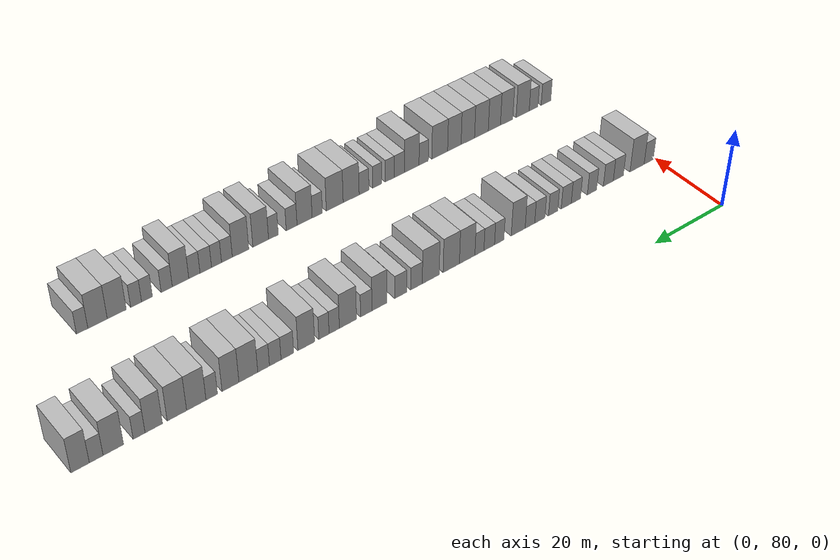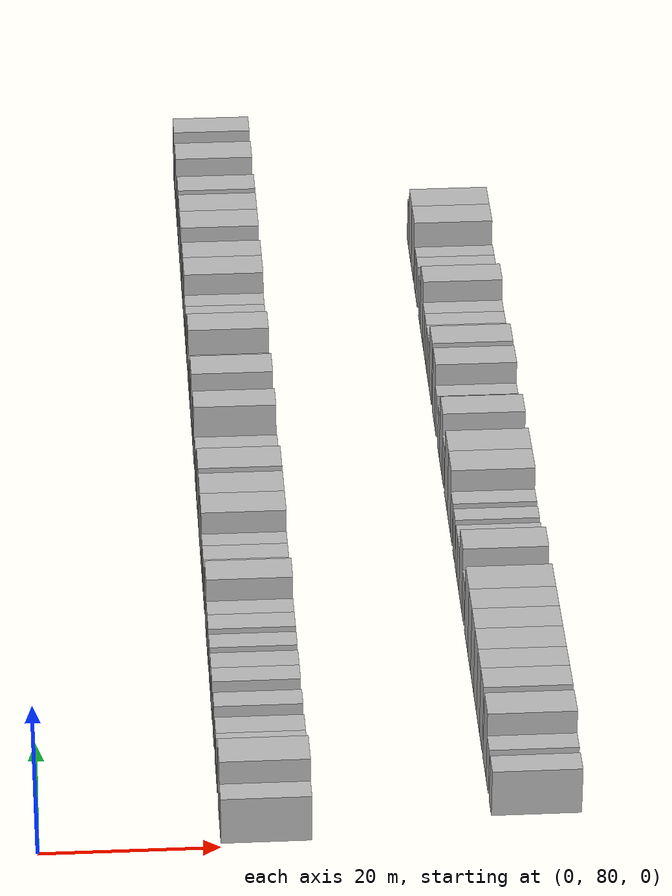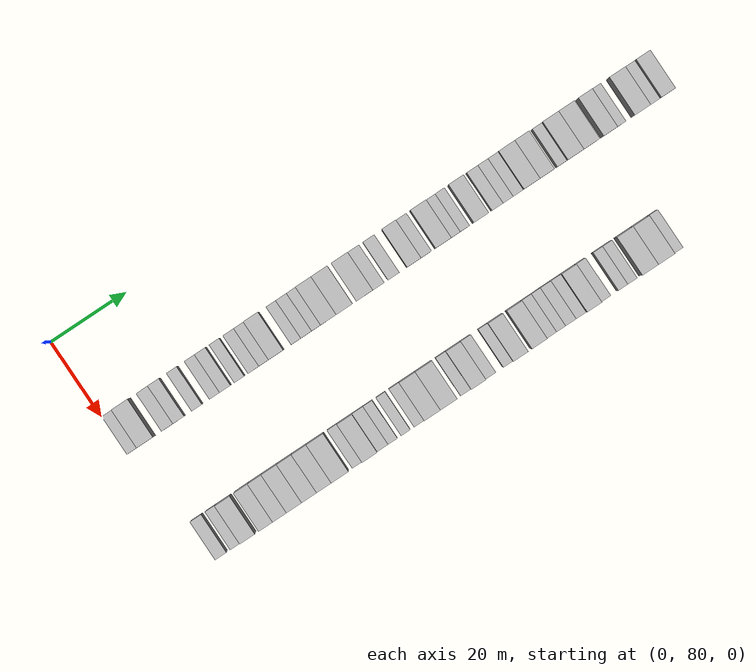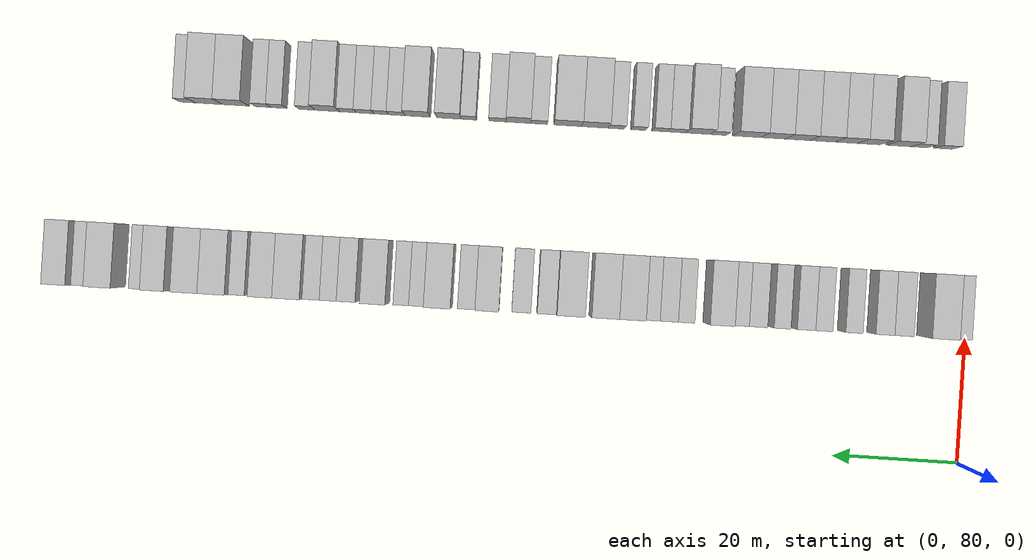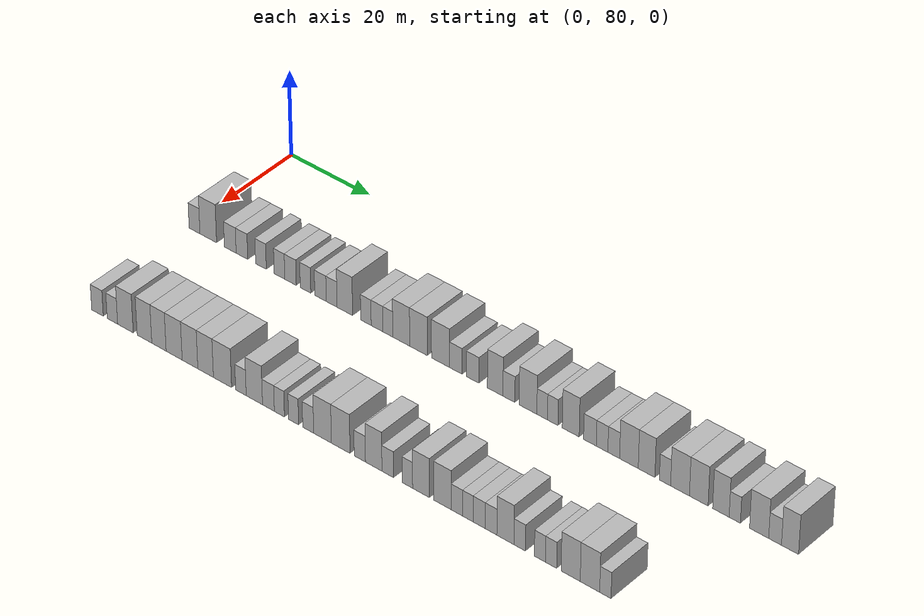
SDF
<sdf version="1.6">
 <world name="default">
  <model name="building_134">
   <static>1</static>
   <pose>25.0000 82.0771 0 0.000000 0.000000 0.000000</pose>
   <link name="link">
    <pose>0 0 3.00 0 0 0</pose>
    <collision name="collision"><geometry><box><size>10.0000 2.7901 6.0000</size></box></geometry></collision>
    <visual name="visual">
     <cast_shadows>0</cast_shadows>
     <geometry><box><size>10.0000 2.7901 6.0000</size></box></geometry>
     <material>
      <script>
       <uri>model://HANNAS_wall/materials/scripts</uri>
       <uri>model://HANNAS_wall/materials/textures</uri>
       <name>vrc/HANNAS_wall</name>
      </script>
     </material>
    </visual>
   </link>
  </model>
  <model name="building_135">
   <static>1</static>
   <pose>25.0000 85.6190 0 0.000000 0.000000 0.000000</pose>
   <link name="link">
    <pose>0 0 4.50 0 0 0</pose>
    <collision name="collision"><geometry><box><size>10.0000 4.2936 9.0000</size></box></geometry></collision>
    <visual name="visual">
     <cast_shadows>0</cast_shadows>
     <geometry><box><size>10.0000 4.2936 9.0000</size></box></geometry>
     <material>
      <script>
       <uri>model://HANNAS_wall/materials/scripts</uri>
       <uri>model://HANNAS_wall/materials/textures</uri>
       <name>vrc/HANNAS_wall</name>
      </script>
     </material>
    </visual>
   </link>
  </model>
  <model name="building_136">
   <static>1</static>
   <pose>25.0000 91.2658 0 0.000000 0.000000 0.000000</pose>
   <link name="link">
    <pose>0 0 3.00 0 0 0</pose>
    <collision name="collision"><geometry><box><size>10.0000 3.0000 6.0000</size></box></geometry></collision>
    <visual name="visual">
     <cast_shadows>0</cast_shadows>
     <geometry><box><size>10.0000 3.0000 6.0000</size></box></geometry>
     <material>
      <script>
       <uri>model://HANNAS_wall/materials/scripts</uri>
       <uri>model://HANNAS_wall/materials/textures</uri>
       <name>vrc/HANNAS_wall</name>
      </script>
     </material>
    </visual>
   </link>
  </model>
  <model name="building_137">
   <static>1</static>
   <pose>25.0000 94.2456 0 0.000000 0.000000 0.000000</pose>
   <link name="link">
    <pose>0 0 3.00 0 0 0</pose>
    <collision name="collision"><geometry><box><size>10.0000 2.9596 6.0000</size></box></geometry></collision>
    <visual name="visual">
     <cast_shadows>0</cast_shadows>
     <geometry><box><size>10.0000 2.9596 6.0000</size></box></geometry>
     <material>
      <script>
       <uri>model://HANNAS_wall/materials/scripts</uri>
       <uri>model://HANNAS_wall/materials/textures</uri>
       <name>vrc/HANNAS_wall</name>
      </script>
     </material>
    </visual>
   </link>
  </model>
  <model name="building_138">
   <static>1</static>
   <pose>25.0000 99.0779 0 0.000000 0.000000 0.000000</pose>
   <link name="link">
    <pose>0 0 3.00 0 0 0</pose>
    <collision name="collision"><geometry><box><size>10.0000 2.7052 6.0000</size></box></geometry></collision>
    <visual name="visual">
     <cast_shadows>0</cast_shadows>
     <geometry><box><size>10.0000 2.7052 6.0000</size></box></geometry>
     <material>
      <script>
       <uri>model://HANNAS_wall/materials/scripts</uri>
       <uri>model://HANNAS_wall/materials/textures</uri>
       <name>vrc/HANNAS_wall</name>
      </script>
     </material>
    </visual>
   </link>
  </model>
  <model name="building_139">
   <static>1</static>
   <pose>25.0000 103.7669 0 0.000000 0.000000 0.000000</pose>
   <link name="link">
    <pose>0 0 3.00 0 0 0</pose>
    <collision name="collision"><geometry><box><size>10.0000 2.6728 6.0000</size></box></geometry></collision>
    <visual name="visual">
     <cast_shadows>0</cast_shadows>
     <geometry><box><size>10.0000 2.6728 6.0000</size></box></geometry>
     <material>
      <script>
       <uri>model://HANNAS_wall/materials/scripts</uri>
       <uri>model://HANNAS_wall/materials/textures</uri>
       <name>vrc/HANNAS_wall</name>
      </script>
     </material>
    </visual>
   </link>
  </model>
  <model name="building_140">
   <static>1</static>
   <pose>25.0000 106.5407 0 0.000000 0.000000 0.000000</pose>
   <link name="link">
    <pose>0 0 3.00 0 0 0</pose>
    <collision name="collision"><geometry><box><size>10.0000 2.8748 6.0000</size></box></geometry></collision>
    <visual name="visual">
     <cast_shadows>0</cast_shadows>
     <geometry><box><size>10.0000 2.8748 6.0000</size></box></geometry>
     <material>
      <script>
       <uri>model://HANNAS_wall/materials/scripts</uri>
       <uri>model://HANNAS_wall/materials/textures</uri>
       <name>vrc/HANNAS_wall</name>
      </script>
     </material>
    </visual>
   </link>
  </model>
  <model name="building_141">
   <static>1</static>
   <pose>25.0000 110.2922 0 0.000000 0.000000 0.000000</pose>
   <link name="link">
    <pose>0 0 3.00 0 0 0</pose>
    <collision name="collision"><geometry><box><size>10.0000 2.6283 6.0000</size></box></geometry></collision>
    <visual name="visual">
     <cast_shadows>0</cast_shadows>
     <geometry><box><size>10.0000 2.6283 6.0000</size></box></geometry>
     <material>
      <script>
       <uri>model://HANNAS_wall/materials/scripts</uri>
       <uri>model://HANNAS_wall/materials/textures</uri>
       <name>vrc/HANNAS_wall</name>
      </script>
     </material>
    </visual>
   </link>
  </model>
  <model name="building_142">
   <static>1</static>
   <pose>25.0000 114.0363 0 0.000000 0.000000 0.000000</pose>
   <link name="link">
    <pose>0 0 3.00 0 0 0</pose>
    <collision name="collision"><geometry><box><size>10.0000 2.8599 6.0000</size></box></geometry></collision>
    <visual name="visual">
     <cast_shadows>0</cast_shadows>
     <geometry><box><size>10.0000 2.8599 6.0000</size></box></geometry>
     <material>
      <script>
       <uri>model://HANNAS_wall/materials/scripts</uri>
       <uri>model://HANNAS_wall/materials/textures</uri>
       <name>vrc/HANNAS_wall</name>
      </script>
     </material>
    </visual>
   </link>
  </model>
  <model name="building_143">
   <static>1</static>
   <pose>25.0000 116.7996 0 0.000000 0.000000 0.000000</pose>
   <link name="link">
    <pose>0 0 3.00 0 0 0</pose>
    <collision name="collision"><geometry><box><size>10.0000 2.6668 6.0000</size></box></geometry></collision>
    <visual name="visual">
     <cast_shadows>0</cast_shadows>
     <geometry><box><size>10.0000 2.6668 6.0000</size></box></geometry>
     <material>
      <script>
       <uri>model://HANNAS_wall/materials/scripts</uri>
       <uri>model://HANNAS_wall/materials/textures</uri>
       <name>vrc/HANNAS_wall</name>
      </script>
     </material>
    </visual>
   </link>
  </model>
  <model name="building_144">
   <static>1</static>
   <pose>25.0000 120.0530 0 0.000000 0.000000 0.000000</pose>
   <link name="link">
    <pose>0 0 4.50 0 0 0</pose>
    <collision name="collision"><geometry><box><size>10.0000 3.8400 9.0000</size></box></geometry></collision>
    <visual name="visual">
     <cast_shadows>0</cast_shadows>
     <geometry><box><size>10.0000 3.8400 9.0000</size></box></geometry>
     <material>
      <script>
       <uri>model://HANNAS_wall/materials/scripts</uri>
       <uri>model://HANNAS_wall/materials/textures</uri>
       <name>vrc/HANNAS_wall</name>
      </script>
     </material>
    </visual>
   </link>
  </model>
  <model name="building_145">
   <static>1</static>
   <pose>25.0000 125.2541 0 0.000000 0.000000 0.000000</pose>
   <link name="link">
    <pose>0 0 3.00 0 0 0</pose>
    <collision name="collision"><geometry><box><size>10.0000 2.5620 6.0000</size></box></geometry></collision>
    <visual name="visual">
     <cast_shadows>0</cast_shadows>
     <geometry><box><size>10.0000 2.5620 6.0000</size></box></geometry>
     <material>
      <script>
       <uri>model://HANNAS_wall/materials/scripts</uri>
       <uri>model://HANNAS_wall/materials/textures</uri>
       <name>vrc/HANNAS_wall</name>
      </script>
     </material>
    </visual>
   </link>
  </model>
  <model name="building_146">
   <static>1</static>
   <pose>25.0000 127.9626 0 0.000000 0.000000 0.000000</pose>
   <link name="link">
    <pose>0 0 3.00 0 0 0</pose>
    <collision name="collision"><geometry><box><size>10.0000 2.8550 6.0000</size></box></geometry></collision>
    <visual name="visual">
     <cast_shadows>0</cast_shadows>
     <geometry><box><size>10.0000 2.8550 6.0000</size></box></geometry>
     <material>
      <script>
       <uri>model://HANNAS_wall/materials/scripts</uri>
       <uri>model://HANNAS_wall/materials/textures</uri>
       <name>vrc/HANNAS_wall</name>
      </script>
     </material>
    </visual>
   </link>
  </model>
  <model name="building_147">
   <static>1</static>
   <pose>25.0000 130.5990 0 0.000000 0.000000 0.000000</pose>
   <link name="link">
    <pose>0 0 3.00 0 0 0</pose>
    <collision name="collision"><geometry><box><size>10.0000 2.4180 6.0000</size></box></geometry></collision>
    <visual name="visual">
     <cast_shadows>0</cast_shadows>
     <geometry><box><size>10.0000 2.4180 6.0000</size></box></geometry>
     <material>
      <script>
       <uri>model://HANNAS_wall/materials/scripts</uri>
       <uri>model://HANNAS_wall/materials/textures</uri>
       <name>vrc/HANNAS_wall</name>
      </script>
     </material>
    </visual>
   </link>
  </model>
  <model name="building_148">
   <static>1</static>
   <pose>25.0000 133.8646 0 0.000000 0.000000 0.000000</pose>
   <link name="link">
    <pose>0 0 4.50 0 0 0</pose>
    <collision name="collision"><geometry><box><size>10.0000 4.1132 9.0000</size></box></geometry></collision>
    <visual name="visual">
     <cast_shadows>0</cast_shadows>
     <geometry><box><size>10.0000 4.1132 9.0000</size></box></geometry>
     <material>
      <script>
       <uri>model://HANNAS_wall/materials/scripts</uri>
       <uri>model://HANNAS_wall/materials/textures</uri>
       <name>vrc/HANNAS_wall</name>
      </script>
     </material>
    </visual>
   </link>
  </model>
  <model name="building_149">
   <static>1</static>
   <pose>25.0000 138.0568 0 0.000000 0.000000 0.000000</pose>
   <link name="link">
    <pose>0 0 4.50 0 0 0</pose>
    <collision name="collision"><geometry><box><size>10.0000 4.2713 9.0000</size></box></geometry></collision>
    <visual name="visual">
     <cast_shadows>0</cast_shadows>
     <geometry><box><size>10.0000 4.2713 9.0000</size></box></geometry>
     <material>
      <script>
       <uri>model://HANNAS_wall/materials/scripts</uri>
       <uri>model://HANNAS_wall/materials/textures</uri>
       <name>vrc/HANNAS_wall</name>
      </script>
     </material>
    </visual>
   </link>
  </model>
  <model name="building_150">
   <static>1</static>
   <pose>25.0000 143.3762 0 0.000000 0.000000 0.000000</pose>
   <link name="link">
    <pose>0 0 4.50 0 0 0</pose>
    <collision name="collision"><geometry><box><size>10.0000 4.3675 9.0000</size></box></geometry></collision>
    <visual name="visual">
     <cast_shadows>0</cast_shadows>
     <geometry><box><size>10.0000 4.3675 9.0000</size></box></geometry>
     <material>
      <script>
       <uri>model://HANNAS_wall/materials/scripts</uri>
       <uri>model://HANNAS_wall/materials/textures</uri>
       <name>vrc/HANNAS_wall</name>
      </script>
     </material>
    </visual>
   </link>
  </model>
  <model name="building_151">
   <static>1</static>
   <pose>25.0000 147.0561 0 0.000000 0.000000 0.000000</pose>
   <link name="link">
    <pose>0 0 3.00 0 0 0</pose>
    <collision name="collision"><geometry><box><size>10.0000 2.9922 6.0000</size></box></geometry></collision>
    <visual name="visual">
     <cast_shadows>0</cast_shadows>
     <geometry><box><size>10.0000 2.9922 6.0000</size></box></geometry>
     <material>
      <script>
       <uri>model://HANNAS_wall/materials/scripts</uri>
       <uri>model://HANNAS_wall/materials/textures</uri>
       <name>vrc/HANNAS_wall</name>
      </script>
     </material>
    </visual>
   </link>
  </model>
  <model name="building_152">
   <static>1</static>
   <pose>25.0000 151.0476 0 0.000000 0.000000 0.000000</pose>
   <link name="link">
    <pose>0 0 3.00 0 0 0</pose>
    <collision name="collision"><geometry><box><size>10.0000 2.9908 6.0000</size></box></geometry></collision>
    <visual name="visual">
     <cast_shadows>0</cast_shadows>
     <geometry><box><size>10.0000 2.9908 6.0000</size></box></geometry>
     <material>
      <script>
       <uri>model://HANNAS_wall/materials/scripts</uri>
       <uri>model://HANNAS_wall/materials/textures</uri>
       <name>vrc/HANNAS_wall</name>
      </script>
     </material>
    </visual>
   </link>
  </model>
  <model name="building_153">
   <static>1</static>
   <pose>25.0000 156.3804 0 0.000000 0.000000 0.000000</pose>
   <link name="link">
    <pose>0 0 4.50 0 0 0</pose>
    <collision name="collision"><geometry><box><size>10.0000 3.6749 9.0000</size></box></geometry></collision>
    <visual name="visual">
     <cast_shadows>0</cast_shadows>
     <geometry><box><size>10.0000 3.6749 9.0000</size></box></geometry>
     <material>
      <script>
       <uri>model://HANNAS_wall/materials/scripts</uri>
       <uri>model://HANNAS_wall/materials/textures</uri>
       <name>vrc/HANNAS_wall</name>
      </script>
     </material>
    </visual>
   </link>
  </model>
  <model name="building_154">
   <static>1</static>
   <pose>25.0000 159.6228 0 0.000000 0.000000 0.000000</pose>
   <link name="link">
    <pose>0 0 3.00 0 0 0</pose>
    <collision name="collision"><geometry><box><size>10.0000 2.8101 6.0000</size></box></geometry></collision>
    <visual name="visual">
     <cast_shadows>0</cast_shadows>
     <geometry><box><size>10.0000 2.8101 6.0000</size></box></geometry>
     <material>
      <script>
       <uri>model://HANNAS_wall/materials/scripts</uri>
       <uri>model://HANNAS_wall/materials/textures</uri>
       <name>vrc/HANNAS_wall</name>
      </script>
     </material>
    </visual>
   </link>
  </model>
  <model name="building_155">
   <static>1</static>
   <pose>25.0000 164.1002 0 0.000000 0.000000 0.000000</pose>
   <link name="link">
    <pose>0 0 4.50 0 0 0</pose>
    <collision name="collision"><geometry><box><size>10.0000 4.1446 9.0000</size></box></geometry></collision>
    <visual name="visual">
     <cast_shadows>0</cast_shadows>
     <geometry><box><size>10.0000 4.1446 9.0000</size></box></geometry>
     <material>
      <script>
       <uri>model://HANNAS_wall/materials/scripts</uri>
       <uri>model://HANNAS_wall/materials/textures</uri>
       <name>vrc/HANNAS_wall</name>
      </script>
     </material>
    </visual>
   </link>
  </model>
  <model name="building_156">
   <static>1</static>
   <pose>25.0000 167.4076 0 0.000000 0.000000 0.000000</pose>
   <link name="link">
    <pose>0 0 3.00 0 0 0</pose>
    <collision name="collision"><geometry><box><size>10.0000 2.4704 6.0000</size></box></geometry></collision>
    <visual name="visual">
     <cast_shadows>0</cast_shadows>
     <geometry><box><size>10.0000 2.4704 6.0000</size></box></geometry>
     <material>
      <script>
       <uri>model://HANNAS_wall/materials/scripts</uri>
       <uri>model://HANNAS_wall/materials/textures</uri>
       <name>vrc/HANNAS_wall</name>
      </script>
     </material>
    </visual>
   </link>
  </model>
  <model name="building_157">
   <static>1</static>
   <pose>25.0000 169.8621 0 0.000000 0.000000 0.000000</pose>
   <link name="link">
    <pose>0 0 3.00 0 0 0</pose>
    <collision name="collision"><geometry><box><size>10.0000 2.4385 6.0000</size></box></geometry></collision>
    <visual name="visual">
     <cast_shadows>0</cast_shadows>
     <geometry><box><size>10.0000 2.4385 6.0000</size></box></geometry>
     <material>
      <script>
       <uri>model://HANNAS_wall/materials/scripts</uri>
       <uri>model://HANNAS_wall/materials/textures</uri>
       <name>vrc/HANNAS_wall</name>
      </script>
     </material>
    </visual>
   </link>
  </model>
  <model name="building_158">
   <static>1</static>
   <pose>25.0000 174.0406 0 0.000000 0.000000 0.000000</pose>
   <link name="link">
    <pose>0 0 4.50 0 0 0</pose>
    <collision name="collision"><geometry><box><size>10.0000 3.9186 9.0000</size></box></geometry></collision>
    <visual name="visual">
     <cast_shadows>0</cast_shadows>
     <geometry><box><size>10.0000 3.9186 9.0000</size></box></geometry>
     <material>
      <script>
       <uri>model://HANNAS_wall/materials/scripts</uri>
       <uri>model://HANNAS_wall/materials/textures</uri>
       <name>vrc/HANNAS_wall</name>
      </script>
     </material>
    </visual>
   </link>
  </model>
  <model name="building_159">
   <static>1</static>
   <pose>25.0000 178.4647 0 0.000000 0.000000 0.000000</pose>
   <link name="link">
    <pose>0 0 3.00 0 0 0</pose>
    <collision name="collision"><geometry><box><size>10.0000 2.9296 6.0000</size></box></geometry></collision>
    <visual name="visual">
     <cast_shadows>0</cast_shadows>
     <geometry><box><size>10.0000 2.9296 6.0000</size></box></geometry>
     <material>
      <script>
       <uri>model://HANNAS_wall/materials/scripts</uri>
       <uri>model://HANNAS_wall/materials/textures</uri>
       <name>vrc/HANNAS_wall</name>
      </script>
     </material>
    </visual>
   </link>
  </model>
  <model name="building_160">
   <static>1</static>
   <pose>25.0000 181.2570 0 0.000000 0.000000 0.000000</pose>
   <link name="link">
    <pose>0 0 3.00 0 0 0</pose>
    <collision name="collision"><geometry><box><size>10.0000 2.6550 6.0000</size></box></geometry></collision>
    <visual name="visual">
     <cast_shadows>0</cast_shadows>
     <geometry><box><size>10.0000 2.6550 6.0000</size></box></geometry>
     <material>
      <script>
       <uri>model://HANNAS_wall/materials/scripts</uri>
       <uri>model://HANNAS_wall/materials/textures</uri>
       <name>vrc/HANNAS_wall</name>
      </script>
     </material>
    </visual>
   </link>
  </model>
  <model name="building_161">
   <static>1</static>
   <pose>25.0000 183.9224 0 0.000000 0.000000 0.000000</pose>
   <link name="link">
    <pose>0 0 3.00 0 0 0</pose>
    <collision name="collision"><geometry><box><size>10.0000 2.6757 6.0000</size></box></geometry></collision>
    <visual name="visual">
     <cast_shadows>0</cast_shadows>
     <geometry><box><size>10.0000 2.6757 6.0000</size></box></geometry>
     <material>
      <script>
       <uri>model://HANNAS_wall/materials/scripts</uri>
       <uri>model://HANNAS_wall/materials/textures</uri>
       <name>vrc/HANNAS_wall</name>
      </script>
     </material>
    </visual>
   </link>
  </model>
  <model name="building_162">
   <static>1</static>
   <pose>25.0000 187.3816 0 0.000000 0.000000 0.000000</pose>
   <link name="link">
    <pose>0 0 4.50 0 0 0</pose>
    <collision name="collision"><geometry><box><size>10.0000 4.2428 9.0000</size></box></geometry></collision>
    <visual name="visual">
     <cast_shadows>0</cast_shadows>
     <geometry><box><size>10.0000 4.2428 9.0000</size></box></geometry>
     <material>
      <script>
       <uri>model://HANNAS_wall/materials/scripts</uri>
       <uri>model://HANNAS_wall/materials/textures</uri>
       <name>vrc/HANNAS_wall</name>
      </script>
     </material>
    </visual>
   </link>
  </model>
  <model name="building_163">
   <static>1</static>
   <pose>25.0000 191.3889 0 0.000000 0.000000 0.000000</pose>
   <link name="link">
    <pose>0 0 4.50 0 0 0</pose>
    <collision name="collision"><geometry><box><size>10.0000 3.7717 9.0000</size></box></geometry></collision>
    <visual name="visual">
     <cast_shadows>0</cast_shadows>
     <geometry><box><size>10.0000 3.7717 9.0000</size></box></geometry>
     <material>
      <script>
       <uri>model://HANNAS_wall/materials/scripts</uri>
       <uri>model://HANNAS_wall/materials/textures</uri>
       <name>vrc/HANNAS_wall</name>
      </script>
     </material>
    </visual>
   </link>
  </model>
  <model name="building_164">
   <static>1</static>
   <pose>25.0000 195.5379 0 0.000000 0.000000 0.000000</pose>
   <link name="link">
    <pose>0 0 3.00 0 0 0</pose>
    <collision name="collision"><geometry><box><size>10.0000 2.5264 6.0000</size></box></geometry></collision>
    <visual name="visual">
     <cast_shadows>0</cast_shadows>
     <geometry><box><size>10.0000 2.5264 6.0000</size></box></geometry>
     <material>
      <script>
       <uri>model://HANNAS_wall/materials/scripts</uri>
       <uri>model://HANNAS_wall/materials/textures</uri>
       <name>vrc/HANNAS_wall</name>
      </script>
     </material>
    </visual>
   </link>
  </model>
  <model name="building_165">
   <static>1</static>
   <pose>25.0000 198.9112 0 0.000000 0.000000 0.000000</pose>
   <link name="link">
    <pose>0 0 4.50 0 0 0</pose>
    <collision name="collision"><geometry><box><size>10.0000 4.2202 9.0000</size></box></geometry></collision>
    <visual name="visual">
     <cast_shadows>0</cast_shadows>
     <geometry><box><size>10.0000 4.2202 9.0000</size></box></geometry>
     <material>
      <script>
       <uri>model://HANNAS_wall/materials/scripts</uri>
       <uri>model://HANNAS_wall/materials/textures</uri>
       <name>vrc/HANNAS_wall</name>
      </script>
     </material>
    </visual>
   </link>
  </model>
  <model name="building_166">
   <static>1</static>
   <pose>25.0000 203.1056 0 0.000000 0.000000 0.000000</pose>
   <link name="link">
    <pose>0 0 4.50 0 0 0</pose>
    <collision name="collision"><geometry><box><size>10.0000 4.1686 9.0000</size></box></geometry></collision>
    <visual name="visual">
     <cast_shadows>0</cast_shadows>
     <geometry><box><size>10.0000 4.1686 9.0000</size></box></geometry>
     <material>
      <script>
       <uri>model://HANNAS_wall/materials/scripts</uri>
       <uri>model://HANNAS_wall/materials/textures</uri>
       <name>vrc/HANNAS_wall</name>
      </script>
     </material>
    </visual>
   </link>
  </model>
  <model name="building_167">
   <static>1</static>
   <pose>25.0000 208.0237 0 0.000000 0.000000 0.000000</pose>
   <link name="link">
    <pose>0 0 4.50 0 0 0</pose>
    <collision name="collision"><geometry><box><size>10.0000 3.6676 9.0000</size></box></geometry></collision>
    <visual name="visual">
     <cast_shadows>0</cast_shadows>
     <geometry><box><size>10.0000 3.6676 9.0000</size></box></geometry>
     <material>
      <script>
       <uri>model://HANNAS_wall/materials/scripts</uri>
       <uri>model://HANNAS_wall/materials/textures</uri>
       <name>vrc/HANNAS_wall</name>
      </script>
     </material>
    </visual>
   </link>
  </model>
  <model name="building_168">
   <static>1</static>
   <pose>25.0000 211.1014 0 0.000000 0.000000 0.000000</pose>
   <link name="link">
    <pose>0 0 3.00 0 0 0</pose>
    <collision name="collision"><geometry><box><size>10.0000 2.4877 6.0000</size></box></geometry></collision>
    <visual name="visual">
     <cast_shadows>0</cast_shadows>
     <geometry><box><size>10.0000 2.4877 6.0000</size></box></geometry>
     <material>
      <script>
       <uri>model://HANNAS_wall/materials/scripts</uri>
       <uri>model://HANNAS_wall/materials/textures</uri>
       <name>vrc/HANNAS_wall</name>
      </script>
     </material>
    </visual>
   </link>
  </model>
  <model name="building_169">
   <static>1</static>
   <pose>25.0000 216.4440 0 0.000000 0.000000 0.000000</pose>
   <link name="link">
    <pose>0 0 4.50 0 0 0</pose>
    <collision name="collision"><geometry><box><size>10.0000 4.1975 9.0000</size></box></geometry></collision>
    <visual name="visual">
     <cast_shadows>0</cast_shadows>
     <geometry><box><size>10.0000 4.1975 9.0000</size></box></geometry>
     <material>
      <script>
       <uri>model://HANNAS_wall/materials/scripts</uri>
       <uri>model://HANNAS_wall/materials/textures</uri>
       <name>vrc/HANNAS_wall</name>
      </script>
     </material>
    </visual>
   </link>
  </model>
  <model name="building_170">
   <static>1</static>
   <pose>25.0000 219.9394 0 0.000000 0.000000 0.000000</pose>
   <link name="link">
    <pose>0 0 3.00 0 0 0</pose>
    <collision name="collision"><geometry><box><size>10.0000 2.7933 6.0000</size></box></geometry></collision>
    <visual name="visual">
     <cast_shadows>0</cast_shadows>
     <geometry><box><size>10.0000 2.7933 6.0000</size></box></geometry>
     <material>
      <script>
       <uri>model://HANNAS_wall/materials/scripts</uri>
       <uri>model://HANNAS_wall/materials/textures</uri>
       <name>vrc/HANNAS_wall</name>
      </script>
     </material>
    </visual>
   </link>
  </model>
  <model name="building_171">
   <static>1</static>
   <pose>25.0000 223.1923 0 0.000000 0.000000 0.000000</pose>
   <link name="link">
    <pose>0 0 4.50 0 0 0</pose>
    <collision name="collision"><geometry><box><size>10.0000 3.7125 9.0000</size></box></geometry></collision>
    <visual name="visual">
     <cast_shadows>0</cast_shadows>
     <geometry><box><size>10.0000 3.7125 9.0000</size></box></geometry>
     <material>
      <script>
       <uri>model://HANNAS_wall/materials/scripts</uri>
       <uri>model://HANNAS_wall/materials/textures</uri>
       <name>vrc/HANNAS_wall</name>
      </script>
     </material>
    </visual>
   </link>
  </model>
  <model name="building_370">
   <static>1</static>
   <pose>55.0000 85.3869 0 0.000000 0.000000 0.000000</pose>
   <link name="link">
    <pose>0 0 3.00 0 0 0</pose>
    <collision name="collision"><geometry><box><size>10.0000 2.9609 6.0000</size></box></geometry></collision>
    <visual name="visual">
     <cast_shadows>0</cast_shadows>
     <geometry><box><size>10.0000 2.9609 6.0000</size></box></geometry>
     <material>
      <script>
       <uri>model://HANNAS_wall/materials/scripts</uri>
       <uri>model://HANNAS_wall/materials/textures</uri>
       <name>vrc/HANNAS_wall</name>
      </script>
     </material>
    </visual>
   </link>
  </model>
  <model name="building_371">
   <static>1</static>
   <pose>55.0000 89.2000 0 0.000000 0.000000 0.000000</pose>
   <link name="link">
    <pose>0 0 3.00 0 0 0</pose>
    <collision name="collision"><geometry><box><size>10.0000 2.6654 6.0000</size></box></geometry></collision>
    <visual name="visual">
     <cast_shadows>0</cast_shadows>
     <geometry><box><size>10.0000 2.6654 6.0000</size></box></geometry>
     <material>
      <script>
       <uri>model://HANNAS_wall/materials/scripts</uri>
       <uri>model://HANNAS_wall/materials/textures</uri>
       <name>vrc/HANNAS_wall</name>
      </script>
     </material>
    </visual>
   </link>
  </model>
  <model name="building_372">
   <static>1</static>
   <pose>55.0000 92.5127 0 0.000000 0.000000 0.000000</pose>
   <link name="link">
    <pose>0 0 4.50 0 0 0</pose>
    <collision name="collision"><geometry><box><size>10.0000 3.9600 9.0000</size></box></geometry></collision>
    <visual name="visual">
     <cast_shadows>0</cast_shadows>
     <geometry><box><size>10.0000 3.9600 9.0000</size></box></geometry>
     <material>
      <script>
       <uri>model://HANNAS_wall/materials/scripts</uri>
       <uri>model://HANNAS_wall/materials/textures</uri>
       <name>vrc/HANNAS_wall</name>
      </script>
     </material>
    </visual>
   </link>
  </model>
  <model name="building_373">
   <static>1</static>
   <pose>55.0000 97.3385 0 0.000000 0.000000 0.000000</pose>
   <link name="link">
    <pose>0 0 4.50 0 0 0</pose>
    <collision name="collision"><geometry><box><size>10.0000 3.6915 9.0000</size></box></geometry></collision>
    <visual name="visual">
     <cast_shadows>0</cast_shadows>
     <geometry><box><size>10.0000 3.6915 9.0000</size></box></geometry>
     <material>
      <script>
       <uri>model://HANNAS_wall/materials/scripts</uri>
       <uri>model://HANNAS_wall/materials/textures</uri>
       <name>vrc/HANNAS_wall</name>
      </script>
     </material>
    </visual>
   </link>
  </model>
  <model name="building_374">
   <static>1</static>
   <pose>55.0000 100.9879 0 0.000000 0.000000 0.000000</pose>
   <link name="link">
    <pose>0 0 4.50 0 0 0</pose>
    <collision name="collision"><geometry><box><size>10.0000 3.6073 9.0000</size></box></geometry></collision>
    <visual name="visual">
     <cast_shadows>0</cast_shadows>
     <geometry><box><size>10.0000 3.6073 9.0000</size></box></geometry>
     <material>
      <script>
       <uri>model://HANNAS_wall/materials/scripts</uri>
       <uri>model://HANNAS_wall/materials/textures</uri>
       <name>vrc/HANNAS_wall</name>
      </script>
     </material>
    </visual>
   </link>
  </model>
  <model name="building_375">
   <static>1</static>
   <pose>55.0000 104.7992 0 0.000000 0.000000 0.000000</pose>
   <link name="link">
    <pose>0 0 4.50 0 0 0</pose>
    <collision name="collision"><geometry><box><size>10.0000 4.0154 9.0000</size></box></geometry></collision>
    <visual name="visual">
     <cast_shadows>0</cast_shadows>
     <geometry><box><size>10.0000 4.0154 9.0000</size></box></geometry>
     <material>
      <script>
       <uri>model://HANNAS_wall/materials/scripts</uri>
       <uri>model://HANNAS_wall/materials/textures</uri>
       <name>vrc/HANNAS_wall</name>
      </script>
     </material>
    </visual>
   </link>
  </model>
  <model name="building_376">
   <static>1</static>
   <pose>55.0000 108.7586 0 0.000000 0.000000 0.000000</pose>
   <link name="link">
    <pose>0 0 4.50 0 0 0</pose>
    <collision name="collision"><geometry><box><size>10.0000 3.9033 9.0000</size></box></geometry></collision>
    <visual name="visual">
     <cast_shadows>0</cast_shadows>
     <geometry><box><size>10.0000 3.9033 9.0000</size></box></geometry>
     <material>
      <script>
       <uri>model://HANNAS_wall/materials/scripts</uri>
       <uri>model://HANNAS_wall/materials/textures</uri>
       <name>vrc/HANNAS_wall</name>
      </script>
     </material>
    </visual>
   </link>
  </model>
  <model name="building_377">
   <static>1</static>
   <pose>55.0000 112.6445 0 0.000000 0.000000 0.000000</pose>
   <link name="link">
    <pose>0 0 4.50 0 0 0</pose>
    <collision name="collision"><geometry><box><size>10.0000 3.8684 9.0000</size></box></geometry></collision>
    <visual name="visual">
     <cast_shadows>0</cast_shadows>
     <geometry><box><size>10.0000 3.8684 9.0000</size></box></geometry>
     <material>
      <script>
       <uri>model://HANNAS_wall/materials/scripts</uri>
       <uri>model://HANNAS_wall/materials/textures</uri>
       <name>vrc/HANNAS_wall</name>
      </script>
     </material>
    </visual>
   </link>
  </model>
  <model name="building_378">
   <static>1</static>
   <pose>55.0000 116.8222 0 0.000000 0.000000 0.000000</pose>
   <link name="link">
    <pose>0 0 4.50 0 0 0</pose>
    <collision name="collision"><geometry><box><size>10.0000 4.4869 9.0000</size></box></geometry></collision>
    <visual name="visual">
     <cast_shadows>0</cast_shadows>
     <geometry><box><size>10.0000 4.4869 9.0000</size></box></geometry>
     <material>
      <script>
       <uri>model://HANNAS_wall/materials/scripts</uri>
       <uri>model://HANNAS_wall/materials/textures</uri>
       <name>vrc/HANNAS_wall</name>
      </script>
     </material>
    </visual>
   </link>
  </model>
  <model name="building_379">
   <static>1</static>
   <pose>55.0000 121.3578 0 0.000000 0.000000 0.000000</pose>
   <link name="link">
    <pose>0 0 3.00 0 0 0</pose>
    <collision name="collision"><geometry><box><size>10.0000 2.5842 6.0000</size></box></geometry></collision>
    <visual name="visual">
     <cast_shadows>0</cast_shadows>
     <geometry><box><size>10.0000 2.5842 6.0000</size></box></geometry>
     <material>
      <script>
       <uri>model://HANNAS_wall/materials/scripts</uri>
       <uri>model://HANNAS_wall/materials/textures</uri>
       <name>vrc/HANNAS_wall</name>
      </script>
     </material>
    </visual>
   </link>
  </model>
  <model name="building_380">
   <static>1</static>
   <pose>55.0000 124.6416 0 0.000000 0.000000 0.000000</pose>
   <link name="link">
    <pose>0 0 4.50 0 0 0</pose>
    <collision name="collision"><geometry><box><size>10.0000 3.9834 9.0000</size></box></geometry></collision>
    <visual name="visual">
     <cast_shadows>0</cast_shadows>
     <geometry><box><size>10.0000 3.9834 9.0000</size></box></geometry>
     <material>
      <script>
       <uri>model://HANNAS_wall/materials/scripts</uri>
       <uri>model://HANNAS_wall/materials/textures</uri>
       <name>vrc/HANNAS_wall</name>
      </script>
     </material>
    </visual>
   </link>
  </model>
  <model name="building_381">
   <static>1</static>
   <pose>55.0000 128.0761 0 0.000000 0.000000 0.000000</pose>
   <link name="link">
    <pose>0 0 3.00 0 0 0</pose>
    <collision name="collision"><geometry><box><size>10.0000 2.8857 6.0000</size></box></geometry></collision>
    <visual name="visual">
     <cast_shadows>0</cast_shadows>
     <geometry><box><size>10.0000 2.8857 6.0000</size></box></geometry>
     <material>
      <script>
       <uri>model://HANNAS_wall/materials/scripts</uri>
       <uri>model://HANNAS_wall/materials/textures</uri>
       <name>vrc/HANNAS_wall</name>
      </script>
     </material>
    </visual>
   </link>
  </model>
  <model name="building_382">
   <static>1</static>
   <pose>55.0000 130.7415 0 0.000000 0.000000 0.000000</pose>
   <link name="link">
    <pose>0 0 3.00 0 0 0</pose>
    <collision name="collision"><geometry><box><size>10.0000 2.4449 6.0000</size></box></geometry></collision>
    <visual name="visual">
     <cast_shadows>0</cast_shadows>
     <geometry><box><size>10.0000 2.4449 6.0000</size></box></geometry>
     <material>
      <script>
       <uri>model://HANNAS_wall/materials/scripts</uri>
       <uri>model://HANNAS_wall/materials/textures</uri>
       <name>vrc/HANNAS_wall</name>
      </script>
     </material>
    </visual>
   </link>
  </model>
  <model name="building_383">
   <static>1</static>
   <pose>55.0000 134.1728 0 0.000000 0.000000 0.000000</pose>
   <link name="link">
    <pose>0 0 3.00 0 0 0</pose>
    <collision name="collision"><geometry><box><size>10.0000 2.4178 6.0000</size></box></geometry></collision>
    <visual name="visual">
     <cast_shadows>0</cast_shadows>
     <geometry><box><size>10.0000 2.4178 6.0000</size></box></geometry>
     <material>
      <script>
       <uri>model://HANNAS_wall/materials/scripts</uri>
       <uri>model://HANNAS_wall/materials/textures</uri>
       <name>vrc/HANNAS_wall</name>
      </script>
     </material>
    </visual>
   </link>
  </model>
  <model name="building_384">
   <static>1</static>
   <pose>55.0000 137.6990 0 0.000000 0.000000 0.000000</pose>
   <link name="link">
    <pose>0 0 3.00 0 0 0</pose>
    <collision name="collision"><geometry><box><size>10.0000 2.6345 6.0000</size></box></geometry></collision>
    <visual name="visual">
     <cast_shadows>0</cast_shadows>
     <geometry><box><size>10.0000 2.6345 6.0000</size></box></geometry>
     <material>
      <script>
       <uri>model://HANNAS_wall/materials/scripts</uri>
       <uri>model://HANNAS_wall/materials/textures</uri>
       <name>vrc/HANNAS_wall</name>
      </script>
     </material>
    </visual>
   </link>
  </model>
  <model name="building_385">
   <static>1</static>
   <pose>55.0000 141.1364 0 0.000000 0.000000 0.000000</pose>
   <link name="link">
    <pose>0 0 4.50 0 0 0</pose>
    <collision name="collision"><geometry><box><size>10.0000 4.2404 9.0000</size></box></geometry></collision>
    <visual name="visual">
     <cast_shadows>0</cast_shadows>
     <geometry><box><size>10.0000 4.2404 9.0000</size></box></geometry>
     <material>
      <script>
       <uri>model://HANNAS_wall/materials/scripts</uri>
       <uri>model://HANNAS_wall/materials/textures</uri>
       <name>vrc/HANNAS_wall</name>
      </script>
     </material>
    </visual>
   </link>
  </model>
  <model name="building_386">
   <static>1</static>
   <pose>55.0000 145.4717 0 0.000000 0.000000 0.000000</pose>
   <link name="link">
    <pose>0 0 4.50 0 0 0</pose>
    <collision name="collision"><geometry><box><size>10.0000 4.4301 9.0000</size></box></geometry></collision>
    <visual name="visual">
     <cast_shadows>0</cast_shadows>
     <geometry><box><size>10.0000 4.4301 9.0000</size></box></geometry>
     <material>
      <script>
       <uri>model://HANNAS_wall/materials/scripts</uri>
       <uri>model://HANNAS_wall/materials/textures</uri>
       <name>vrc/HANNAS_wall</name>
      </script>
     </material>
    </visual>
   </link>
  </model>
  <model name="building_387">
   <static>1</static>
   <pose>55.0000 150.0141 0 0.000000 0.000000 0.000000</pose>
   <link name="link">
    <pose>0 0 3.00 0 0 0</pose>
    <collision name="collision"><geometry><box><size>10.0000 2.6546 6.0000</size></box></geometry></collision>
    <visual name="visual">
     <cast_shadows>0</cast_shadows>
     <geometry><box><size>10.0000 2.6546 6.0000</size></box></geometry>
     <material>
      <script>
       <uri>model://HANNAS_wall/materials/scripts</uri>
       <uri>model://HANNAS_wall/materials/textures</uri>
       <name>vrc/HANNAS_wall</name>
      </script>
     </material>
    </visual>
   </link>
  </model>
  <model name="building_388">
   <static>1</static>
   <pose>55.0000 153.2859 0 0.000000 0.000000 0.000000</pose>
   <link name="link">
    <pose>0 0 4.50 0 0 0</pose>
    <collision name="collision"><geometry><box><size>10.0000 3.8891 9.0000</size></box></geometry></collision>
    <visual name="visual">
     <cast_shadows>0</cast_shadows>
     <geometry><box><size>10.0000 3.8891 9.0000</size></box></geometry>
     <material>
      <script>
       <uri>model://HANNAS_wall/materials/scripts</uri>
       <uri>model://HANNAS_wall/materials/textures</uri>
       <name>vrc/HANNAS_wall</name>
      </script>
     </material>
    </visual>
   </link>
  </model>
  <model name="building_389">
   <static>1</static>
   <pose>55.0000 156.6039 0 0.000000 0.000000 0.000000</pose>
   <link name="link">
    <pose>0 0 3.00 0 0 0</pose>
    <collision name="collision"><geometry><box><size>10.0000 2.7468 6.0000</size></box></geometry></collision>
    <visual name="visual">
     <cast_shadows>0</cast_shadows>
     <geometry><box><size>10.0000 2.7468 6.0000</size></box></geometry>
     <material>
      <script>
       <uri>model://HANNAS_wall/materials/scripts</uri>
       <uri>model://HANNAS_wall/materials/textures</uri>
       <name>vrc/HANNAS_wall</name>
      </script>
     </material>
    </visual>
   </link>
  </model>
  <model name="building_390">
   <static>1</static>
   <pose>55.0000 161.1964 0 0.000000 0.000000 0.000000</pose>
   <link name="link">
    <pose>0 0 3.00 0 0 0</pose>
    <collision name="collision"><geometry><box><size>10.0000 2.4383 6.0000</size></box></geometry></collision>
    <visual name="visual">
     <cast_shadows>0</cast_shadows>
     <geometry><box><size>10.0000 2.4383 6.0000</size></box></geometry>
     <material>
      <script>
       <uri>model://HANNAS_wall/materials/scripts</uri>
       <uri>model://HANNAS_wall/materials/textures</uri>
       <name>vrc/HANNAS_wall</name>
      </script>
     </material>
    </visual>
   </link>
  </model>
  <model name="building_391">
   <static>1</static>
   <pose>55.0000 164.3715 0 0.000000 0.000000 0.000000</pose>
   <link name="link">
    <pose>0 0 4.50 0 0 0</pose>
    <collision name="collision"><geometry><box><size>10.0000 3.9119 9.0000</size></box></geometry></collision>
    <visual name="visual">
     <cast_shadows>0</cast_shadows>
     <geometry><box><size>10.0000 3.9119 9.0000</size></box></geometry>
     <material>
      <script>
       <uri>model://HANNAS_wall/materials/scripts</uri>
       <uri>model://HANNAS_wall/materials/textures</uri>
       <name>vrc/HANNAS_wall</name>
      </script>
     </material>
    </visual>
   </link>
  </model>
  <model name="building_392">
   <static>1</static>
   <pose>55.0000 169.3409 0 0.000000 0.000000 0.000000</pose>
   <link name="link">
    <pose>0 0 4.50 0 0 0</pose>
    <collision name="collision"><geometry><box><size>10.0000 4.0269 9.0000</size></box></geometry></collision>
    <visual name="visual">
     <cast_shadows>0</cast_shadows>
     <geometry><box><size>10.0000 4.0269 9.0000</size></box></geometry>
     <material>
      <script>
       <uri>model://HANNAS_wall/materials/scripts</uri>
       <uri>model://HANNAS_wall/materials/textures</uri>
       <name>vrc/HANNAS_wall</name>
      </script>
     </material>
    </visual>
   </link>
  </model>
  <model name="building_393">
   <static>1</static>
   <pose>55.0000 172.6695 0 0.000000 0.000000 0.000000</pose>
   <link name="link">
    <pose>0 0 3.00 0 0 0</pose>
    <collision name="collision"><geometry><box><size>10.0000 2.6305 6.0000</size></box></geometry></collision>
    <visual name="visual">
     <cast_shadows>0</cast_shadows>
     <geometry><box><size>10.0000 2.6305 6.0000</size></box></geometry>
     <material>
      <script>
       <uri>model://HANNAS_wall/materials/scripts</uri>
       <uri>model://HANNAS_wall/materials/textures</uri>
       <name>vrc/HANNAS_wall</name>
      </script>
     </material>
    </visual>
   </link>
  </model>
  <model name="building_394">
   <static>1</static>
   <pose>55.0000 175.1867 0 0.000000 0.000000 0.000000</pose>
   <link name="link">
    <pose>0 0 3.00 0 0 0</pose>
    <collision name="collision"><geometry><box><size>10.0000 2.4039 6.0000</size></box></geometry></collision>
    <visual name="visual">
     <cast_shadows>0</cast_shadows>
     <geometry><box><size>10.0000 2.4039 6.0000</size></box></geometry>
     <material>
      <script>
       <uri>model://HANNAS_wall/materials/scripts</uri>
       <uri>model://HANNAS_wall/materials/textures</uri>
       <name>vrc/HANNAS_wall</name>
      </script>
     </material>
    </visual>
   </link>
  </model>
  <model name="building_395">
   <static>1</static>
   <pose>55.0000 177.7706 0 0.000000 0.000000 0.000000</pose>
   <link name="link">
    <pose>0 0 3.00 0 0 0</pose>
    <collision name="collision"><geometry><box><size>10.0000 2.7640 6.0000</size></box></geometry></collision>
    <visual name="visual">
     <cast_shadows>0</cast_shadows>
     <geometry><box><size>10.0000 2.7640 6.0000</size></box></geometry>
     <material>
      <script>
       <uri>model://HANNAS_wall/materials/scripts</uri>
       <uri>model://HANNAS_wall/materials/textures</uri>
       <name>vrc/HANNAS_wall</name>
      </script>
     </material>
    </visual>
   </link>
  </model>
  <model name="building_396">
   <static>1</static>
   <pose>55.0000 180.4833 0 0.000000 0.000000 0.000000</pose>
   <link name="link">
    <pose>0 0 3.00 0 0 0</pose>
    <collision name="collision"><geometry><box><size>10.0000 2.6613 6.0000</size></box></geometry></collision>
    <visual name="visual">
     <cast_shadows>0</cast_shadows>
     <geometry><box><size>10.0000 2.6613 6.0000</size></box></geometry>
     <material>
      <script>
       <uri>model://HANNAS_wall/materials/scripts</uri>
       <uri>model://HANNAS_wall/materials/textures</uri>
       <name>vrc/HANNAS_wall</name>
      </script>
     </material>
    </visual>
   </link>
  </model>
  <model name="building_397">
   <static>1</static>
   <pose>55.0000 183.7464 0 0.000000 0.000000 0.000000</pose>
   <link name="link">
    <pose>0 0 4.50 0 0 0</pose>
    <collision name="collision"><geometry><box><size>10.0000 3.8650 9.0000</size></box></geometry></collision>
    <visual name="visual">
     <cast_shadows>0</cast_shadows>
     <geometry><box><size>10.0000 3.8650 9.0000</size></box></geometry>
     <material>
      <script>
       <uri>model://HANNAS_wall/materials/scripts</uri>
       <uri>model://HANNAS_wall/materials/textures</uri>
       <name>vrc/HANNAS_wall</name>
      </script>
     </material>
    </visual>
   </link>
  </model>
  <model name="building_398">
   <static>1</static>
   <pose>55.0000 186.9861 0 0.000000 0.000000 0.000000</pose>
   <link name="link">
    <pose>0 0 3.00 0 0 0</pose>
    <collision name="collision"><geometry><box><size>10.0000 2.6144 6.0000</size></box></geometry></collision>
    <visual name="visual">
     <cast_shadows>0</cast_shadows>
     <geometry><box><size>10.0000 2.6144 6.0000</size></box></geometry>
     <material>
      <script>
       <uri>model://HANNAS_wall/materials/scripts</uri>
       <uri>model://HANNAS_wall/materials/textures</uri>
       <name>vrc/HANNAS_wall</name>
      </script>
     </material>
    </visual>
   </link>
  </model>
  <model name="building_399">
   <static>1</static>
   <pose>55.0000 191.5415 0 0.000000 0.000000 0.000000</pose>
   <link name="link">
    <pose>0 0 3.00 0 0 0</pose>
    <collision name="collision"><geometry><box><size>10.0000 2.4963 6.0000</size></box></geometry></collision>
    <visual name="visual">
     <cast_shadows>0</cast_shadows>
     <geometry><box><size>10.0000 2.4963 6.0000</size></box></geometry>
     <material>
      <script>
       <uri>model://HANNAS_wall/materials/scripts</uri>
       <uri>model://HANNAS_wall/materials/textures</uri>
       <name>vrc/HANNAS_wall</name>
      </script>
     </material>
    </visual>
   </link>
  </model>
  <model name="building_400">
   <static>1</static>
   <pose>55.0000 194.0384 0 0.000000 0.000000 0.000000</pose>
   <link name="link">
    <pose>0 0 3.00 0 0 0</pose>
    <collision name="collision"><geometry><box><size>10.0000 2.4976 6.0000</size></box></geometry></collision>
    <visual name="visual">
     <cast_shadows>0</cast_shadows>
     <geometry><box><size>10.0000 2.4976 6.0000</size></box></geometry>
     <material>
      <script>
       <uri>model://HANNAS_wall/materials/scripts</uri>
       <uri>model://HANNAS_wall/materials/textures</uri>
       <name>vrc/HANNAS_wall</name>
      </script>
     </material>
    </visual>
   </link>
  </model>
  <model name="building_401">
   <static>1</static>
   <pose>55.0000 198.4156 0 0.000000 0.000000 0.000000</pose>
   <link name="link">
    <pose>0 0 4.50 0 0 0</pose>
    <collision name="collision"><geometry><box><size>10.0000 4.2567 9.0000</size></box></geometry></collision>
    <visual name="visual">
     <cast_shadows>0</cast_shadows>
     <geometry><box><size>10.0000 4.2567 9.0000</size></box></geometry>
     <material>
      <script>
       <uri>model://HANNAS_wall/materials/scripts</uri>
       <uri>model://HANNAS_wall/materials/textures</uri>
       <name>vrc/HANNAS_wall</name>
      </script>
     </material>
    </visual>
   </link>
  </model>
  <model name="building_402">
   <static>1</static>
   <pose>55.0000 202.6981 0 0.000000 0.000000 0.000000</pose>
   <link name="link">
    <pose>0 0 4.50 0 0 0</pose>
    <collision name="collision"><geometry><box><size>10.0000 4.3085 9.0000</size></box></geometry></collision>
    <visual name="visual">
     <cast_shadows>0</cast_shadows>
     <geometry><box><size>10.0000 4.3085 9.0000</size></box></geometry>
     <material>
      <script>
       <uri>model://HANNAS_wall/materials/scripts</uri>
       <uri>model://HANNAS_wall/materials/textures</uri>
       <name>vrc/HANNAS_wall</name>
      </script>
     </material>
    </visual>
   </link>
  </model>
  <model name="building_403">
   <static>1</static>
   <pose>55.0000 206.1012 0 0.000000 0.000000 0.000000</pose>
   <link name="link">
    <pose>0 0 3.00 0 0 0</pose>
    <collision name="collision"><geometry><box><size>10.0000 2.4977 6.0000</size></box></geometry></collision>
    <visual name="visual">
     <cast_shadows>0</cast_shadows>
     <geometry><box><size>10.0000 2.4977 6.0000</size></box></geometry>
     <material>
      <script>
       <uri>model://HANNAS_wall/materials/scripts</uri>
       <uri>model://HANNAS_wall/materials/textures</uri>
       <name>vrc/HANNAS_wall</name>
      </script>
     </material>
    </visual>
   </link>
  </model>
 </world>
</sdf>
